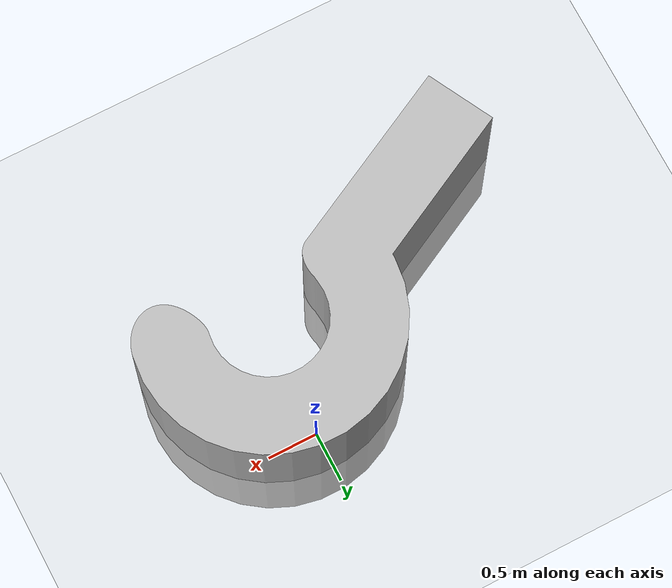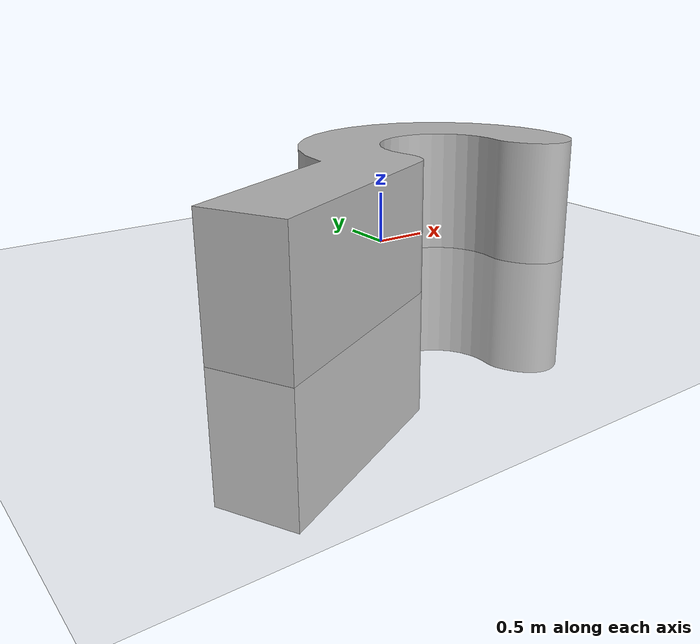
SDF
<?xml version="1.0" ?>
<sdf version="1.4">
  <world name="default">
    <!-- A global light source -->
    <include>
      <uri>model://sun</uri>
    </include>

    <!-- A ground plane -->
    <include>
      <uri>model://ground_plane</uri>
    </include>

    <include>
      <uri>model://blender_wall_model</uri>
    </include>

  </world>
</sdf>

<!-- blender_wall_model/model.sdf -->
<sdf version='1.7'>
  <model name='wall'>
    <pose>0 0 0 0 0 0</pose>
    <static>true</static>
    <link name="link">
      <visual name="visual">
        <geometry>
          <mesh>
            <uri>
              model://blender_wall_model/meshes/ri_wall.stl

            </uri>
            <scale>-2 -2 -2</scale>
          </mesh>
        </geometry>
      </visual>
      <collision name="collision">
        <geometry>
          <mesh>
            <uri>
              model://blender_wall_model/meshes/ri_wall.stl

            </uri>
            <scale>-2 -2 -2</scale>
          </mesh>
        </geometry>
      </collision>
    </link>
    <allow_auto_disable>1</allow_auto_disable>
  </model>
</sdf>
